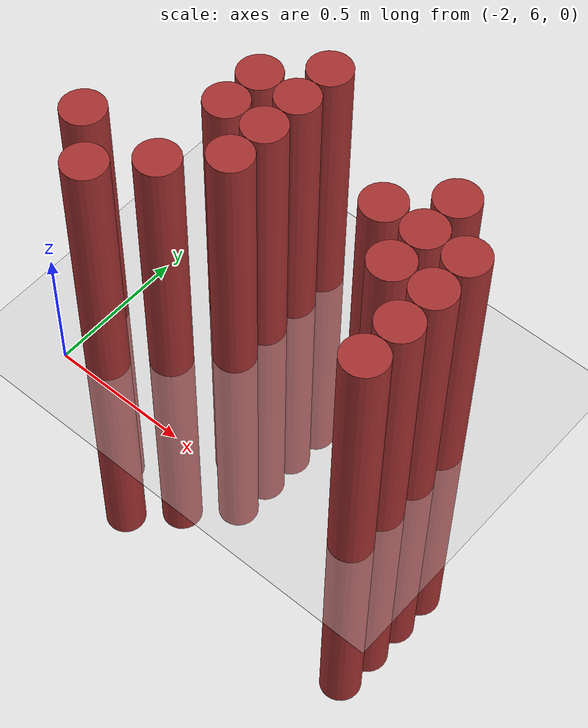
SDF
<sdf version="1.6">
 <world name="default">
  <model name="ground_plane">
   <static>1</static>
   <link name="link">
    <collision name="collision">
     <geometry><plane><normal>0 0 1</normal><size>100 100</size></plane></geometry>
     <surface><friction><ode><mu>100</mu><mu2>50</mu2></ode></friction></surface>
    </collision>
    <visual name="visual">
     <cast_shadows>0</cast_shadows>
     <geometry><plane><normal>0 0 1</normal><size>100 100</size></plane></geometry>
     <material>
      <script><uri>file://media/materials/scripts/gazebo.material</uri><name>Gazebo/Grey</name></script>
     </material>
    </visual>
   </link>
  </model>
  <model name="unit_cylinder_186">
   <static>1</static>
   <pose>-2.025000 6.225000 0.000000 0.000000 0.000000 0.000000</pose>
   <link name="link">
    <inertial>
     <mass>1</mass>
     <inertia><ixx>0.145833</ixx><ixy>0</ixy><ixz>0</ixz><iyy>0.145833</iyy><iyz>0</iyz><izz>0.125</izz></inertia>
    </inertial>
    <collision name="collision">
     <geometry><cylinder><radius>0.075000</radius><length>2</length></cylinder></geometry>
    </collision>
    <visual name="visual">
     <geometry><cylinder><radius>0.075000</radius><length>2</length></cylinder></geometry>
     <material>
      <ambient>0.648000 0.192000 0.192000 1</ambient>
      <diffuse>0.648000 0.192000 0.192000 1</diffuse>
     </material>
     <material>
      <script><name>Gazebo/Grey</name><uri>file://media/materials/scripts/gazebo.material</uri></script>
     </material>
    </visual>
   </link>
  </model>
  <model name="unit_cylinder_190">
   <static>1</static>
   <pose>-1.875000 6.075000 0.000000 0.000000 0.000000 0.000000</pose>
   <link name="link">
    <inertial>
     <mass>1</mass>
     <inertia><ixx>0.145833</ixx><ixy>0</ixy><ixz>0</ixz><iyy>0.145833</iyy><iyz>0</iyz><izz>0.125</izz></inertia>
    </inertial>
    <collision name="collision">
     <geometry><cylinder><radius>0.075000</radius><length>2</length></cylinder></geometry>
    </collision>
    <visual name="visual">
     <geometry><cylinder><radius>0.075000</radius><length>2</length></cylinder></geometry>
     <material>
      <ambient>0.648000 0.192000 0.192000 1</ambient>
      <diffuse>0.648000 0.192000 0.192000 1</diffuse>
     </material>
     <material>
      <script><name>Gazebo/Grey</name><uri>file://media/materials/scripts/gazebo.material</uri></script>
     </material>
    </visual>
   </link>
  </model>
  <model name="unit_cylinder_195">
   <static>1</static>
   <pose>-1.725000 6.225000 0.000000 0.000000 0.000000 0.000000</pose>
   <link name="link">
    <inertial>
     <mass>1</mass>
     <inertia><ixx>0.145833</ixx><ixy>0</ixy><ixz>0</ixz><iyy>0.145833</iyy><iyz>0</iyz><izz>0.125</izz></inertia>
    </inertial>
    <collision name="collision">
     <geometry><cylinder><radius>0.075000</radius><length>2</length></cylinder></geometry>
    </collision>
    <visual name="visual">
     <geometry><cylinder><radius>0.075000</radius><length>2</length></cylinder></geometry>
     <material>
      <ambient>0.648000 0.192000 0.192000 1</ambient>
      <diffuse>0.648000 0.192000 0.192000 1</diffuse>
     </material>
     <material>
      <script><name>Gazebo/Grey</name><uri>file://media/materials/scripts/gazebo.material</uri></script>
     </material>
    </visual>
   </link>
  </model>
  <model name="unit_cylinder_196">
   <static>1</static>
   <pose>-1.725000 6.525000 0.000000 0.000000 0.000000 0.000000</pose>
   <link name="link">
    <inertial>
     <mass>1</mass>
     <inertia><ixx>0.145833</ixx><ixy>0</ixy><ixz>0</ixz><iyy>0.145833</iyy><iyz>0</iyz><izz>0.125</izz></inertia>
    </inertial>
    <collision name="collision">
     <geometry><cylinder><radius>0.075000</radius><length>2</length></cylinder></geometry>
    </collision>
    <visual name="visual">
     <geometry><cylinder><radius>0.075000</radius><length>2</length></cylinder></geometry>
     <material>
      <ambient>0.648000 0.192000 0.192000 1</ambient>
      <diffuse>0.648000 0.192000 0.192000 1</diffuse>
     </material>
     <material>
      <script><name>Gazebo/Grey</name><uri>file://media/materials/scripts/gazebo.material</uri></script>
     </material>
    </visual>
   </link>
  </model>
  <model name="unit_cylinder_197">
   <static>1</static>
   <pose>-1.725000 6.675000 0.000000 0.000000 0.000000 0.000000</pose>
   <link name="link">
    <inertial>
     <mass>1</mass>
     <inertia><ixx>0.145833</ixx><ixy>0</ixy><ixz>0</ixz><iyy>0.145833</iyy><iyz>0</iyz><izz>0.125</izz></inertia>
    </inertial>
    <collision name="collision">
     <geometry><cylinder><radius>0.075000</radius><length>2</length></cylinder></geometry>
    </collision>
    <visual name="visual">
     <geometry><cylinder><radius>0.075000</radius><length>2</length></cylinder></geometry>
     <material>
      <ambient>0.648000 0.192000 0.192000 1</ambient>
      <diffuse>0.648000 0.192000 0.192000 1</diffuse>
     </material>
     <material>
      <script><name>Gazebo/Grey</name><uri>file://media/materials/scripts/gazebo.material</uri></script>
     </material>
    </visual>
   </link>
  </model>
  <model name="unit_cylinder_200">
   <static>1</static>
   <pose>-1.575000 6.375000 0.000000 0.000000 0.000000 0.000000</pose>
   <link name="link">
    <inertial>
     <mass>1</mass>
     <inertia><ixx>0.145833</ixx><ixy>0</ixy><ixz>0</ixz><iyy>0.145833</iyy><iyz>0</iyz><izz>0.125</izz></inertia>
    </inertial>
    <collision name="collision">
     <geometry><cylinder><radius>0.075000</radius><length>2</length></cylinder></geometry>
    </collision>
    <visual name="visual">
     <geometry><cylinder><radius>0.075000</radius><length>2</length></cylinder></geometry>
     <material>
      <ambient>0.648000 0.192000 0.192000 1</ambient>
      <diffuse>0.648000 0.192000 0.192000 1</diffuse>
     </material>
     <material>
      <script><name>Gazebo/Grey</name><uri>file://media/materials/scripts/gazebo.material</uri></script>
     </material>
    </visual>
   </link>
  </model>
  <model name="unit_cylinder_201">
   <static>1</static>
   <pose>-1.575000 6.525000 0.000000 0.000000 0.000000 0.000000</pose>
   <link name="link">
    <inertial>
     <mass>1</mass>
     <inertia><ixx>0.145833</ixx><ixy>0</ixy><ixz>0</ixz><iyy>0.145833</iyy><iyz>0</iyz><izz>0.125</izz></inertia>
    </inertial>
    <collision name="collision">
     <geometry><cylinder><radius>0.075000</radius><length>2</length></cylinder></geometry>
    </collision>
    <visual name="visual">
     <geometry><cylinder><radius>0.075000</radius><length>2</length></cylinder></geometry>
     <material>
      <ambient>0.648000 0.192000 0.192000 1</ambient>
      <diffuse>0.648000 0.192000 0.192000 1</diffuse>
     </material>
     <material>
      <script><name>Gazebo/Grey</name><uri>file://media/materials/scripts/gazebo.material</uri></script>
     </material>
    </visual>
   </link>
  </model>
  <model name="unit_cylinder_202">
   <static>1</static>
   <pose>-1.575000 6.675000 0.000000 0.000000 0.000000 0.000000</pose>
   <link name="link">
    <inertial>
     <mass>1</mass>
     <inertia><ixx>0.145833</ixx><ixy>0</ixy><ixz>0</ixz><iyy>0.145833</iyy><iyz>0</iyz><izz>0.125</izz></inertia>
    </inertial>
    <collision name="collision">
     <geometry><cylinder><radius>0.075000</radius><length>2</length></cylinder></geometry>
    </collision>
    <visual name="visual">
     <geometry><cylinder><radius>0.075000</radius><length>2</length></cylinder></geometry>
     <material>
      <ambient>0.648000 0.192000 0.192000 1</ambient>
      <diffuse>0.648000 0.192000 0.192000 1</diffuse>
     </material>
     <material>
      <script><name>Gazebo/Grey</name><uri>file://media/materials/scripts/gazebo.material</uri></script>
     </material>
    </visual>
   </link>
  </model>
  <model name="unit_cylinder_203">
   <static>1</static>
   <pose>-1.575000 6.825000 0.000000 0.000000 0.000000 0.000000</pose>
   <link name="link">
    <inertial>
     <mass>1</mass>
     <inertia><ixx>0.145833</ixx><ixy>0</ixy><ixz>0</ixz><iyy>0.145833</iyy><iyz>0</iyz><izz>0.125</izz></inertia>
    </inertial>
    <collision name="collision">
     <geometry><cylinder><radius>0.075000</radius><length>2</length></cylinder></geometry>
    </collision>
    <visual name="visual">
     <geometry><cylinder><radius>0.075000</radius><length>2</length></cylinder></geometry>
     <material>
      <ambient>0.648000 0.192000 0.192000 1</ambient>
      <diffuse>0.648000 0.192000 0.192000 1</diffuse>
     </material>
     <material>
      <script><name>Gazebo/Grey</name><uri>file://media/materials/scripts/gazebo.material</uri></script>
     </material>
    </visual>
   </link>
  </model>
  <model name="unit_cylinder_206">
   <static>1</static>
   <pose>-1.125000 6.525000 0.000000 0.000000 0.000000 0.000000</pose>
   <link name="link">
    <inertial>
     <mass>1</mass>
     <inertia><ixx>0.145833</ixx><ixy>0</ixy><ixz>0</ixz><iyy>0.145833</iyy><iyz>0</iyz><izz>0.125</izz></inertia>
    </inertial>
    <collision name="collision">
     <geometry><cylinder><radius>0.075000</radius><length>2</length></cylinder></geometry>
    </collision>
    <visual name="visual">
     <geometry><cylinder><radius>0.075000</radius><length>2</length></cylinder></geometry>
     <material>
      <ambient>0.648000 0.192000 0.192000 1</ambient>
      <diffuse>0.648000 0.192000 0.192000 1</diffuse>
     </material>
     <material>
      <script><name>Gazebo/Grey</name><uri>file://media/materials/scripts/gazebo.material</uri></script>
     </material>
    </visual>
   </link>
  </model>
  <model name="unit_cylinder_209">
   <static>1</static>
   <pose>-0.975000 6.375000 0.000000 0.000000 0.000000 0.000000</pose>
   <link name="link">
    <inertial>
     <mass>1</mass>
     <inertia><ixx>0.145833</ixx><ixy>0</ixy><ixz>0</ixz><iyy>0.145833</iyy><iyz>0</iyz><izz>0.125</izz></inertia>
    </inertial>
    <collision name="collision">
     <geometry><cylinder><radius>0.075000</radius><length>2</length></cylinder></geometry>
    </collision>
    <visual name="visual">
     <geometry><cylinder><radius>0.075000</radius><length>2</length></cylinder></geometry>
     <material>
      <ambient>0.648000 0.192000 0.192000 1</ambient>
      <diffuse>0.648000 0.192000 0.192000 1</diffuse>
     </material>
     <material>
      <script><name>Gazebo/Grey</name><uri>file://media/materials/scripts/gazebo.material</uri></script>
     </material>
    </visual>
   </link>
  </model>
  <model name="unit_cylinder_210">
   <static>1</static>
   <pose>-0.975000 6.525000 0.000000 0.000000 0.000000 0.000000</pose>
   <link name="link">
    <inertial>
     <mass>1</mass>
     <inertia><ixx>0.145833</ixx><ixy>0</ixy><ixz>0</ixz><iyy>0.145833</iyy><iyz>0</iyz><izz>0.125</izz></inertia>
    </inertial>
    <collision name="collision">
     <geometry><cylinder><radius>0.075000</radius><length>2</length></cylinder></geometry>
    </collision>
    <visual name="visual">
     <geometry><cylinder><radius>0.075000</radius><length>2</length></cylinder></geometry>
     <material>
      <ambient>0.648000 0.192000 0.192000 1</ambient>
      <diffuse>0.648000 0.192000 0.192000 1</diffuse>
     </material>
     <material>
      <script><name>Gazebo/Grey</name><uri>file://media/materials/scripts/gazebo.material</uri></script>
     </material>
    </visual>
   </link>
  </model>
  <model name="unit_cylinder_211">
   <static>1</static>
   <pose>-0.975000 6.675000 0.000000 0.000000 0.000000 0.000000</pose>
   <link name="link">
    <inertial>
     <mass>1</mass>
     <inertia><ixx>0.145833</ixx><ixy>0</ixy><ixz>0</ixz><iyy>0.145833</iyy><iyz>0</iyz><izz>0.125</izz></inertia>
    </inertial>
    <collision name="collision">
     <geometry><cylinder><radius>0.075000</radius><length>2</length></cylinder></geometry>
    </collision>
    <visual name="visual">
     <geometry><cylinder><radius>0.075000</radius><length>2</length></cylinder></geometry>
     <material>
      <ambient>0.648000 0.192000 0.192000 1</ambient>
      <diffuse>0.648000 0.192000 0.192000 1</diffuse>
     </material>
     <material>
      <script><name>Gazebo/Grey</name><uri>file://media/materials/scripts/gazebo.material</uri></script>
     </material>
    </visual>
   </link>
  </model>
  <model name="unit_cylinder_215">
   <static>1</static>
   <pose>-0.825000 6.075000 0.000000 0.000000 0.000000 0.000000</pose>
   <link name="link">
    <inertial>
     <mass>1</mass>
     <inertia><ixx>0.145833</ixx><ixy>0</ixy><ixz>0</ixz><iyy>0.145833</iyy><iyz>0</iyz><izz>0.125</izz></inertia>
    </inertial>
    <collision name="collision">
     <geometry><cylinder><radius>0.075000</radius><length>2</length></cylinder></geometry>
    </collision>
    <visual name="visual">
     <geometry><cylinder><radius>0.075000</radius><length>2</length></cylinder></geometry>
     <material>
      <ambient>0.648000 0.192000 0.192000 1</ambient>
      <diffuse>0.648000 0.192000 0.192000 1</diffuse>
     </material>
     <material>
      <script><name>Gazebo/Grey</name><uri>file://media/materials/scripts/gazebo.material</uri></script>
     </material>
    </visual>
   </link>
  </model>
  <model name="unit_cylinder_216">
   <static>1</static>
   <pose>-0.825000 6.225000 0.000000 0.000000 0.000000 0.000000</pose>
   <link name="link">
    <inertial>
     <mass>1</mass>
     <inertia><ixx>0.145833</ixx><ixy>0</ixy><ixz>0</ixz><iyy>0.145833</iyy><iyz>0</iyz><izz>0.125</izz></inertia>
    </inertial>
    <collision name="collision">
     <geometry><cylinder><radius>0.075000</radius><length>2</length></cylinder></geometry>
    </collision>
    <visual name="visual">
     <geometry><cylinder><radius>0.075000</radius><length>2</length></cylinder></geometry>
     <material>
      <ambient>0.648000 0.192000 0.192000 1</ambient>
      <diffuse>0.648000 0.192000 0.192000 1</diffuse>
     </material>
     <material>
      <script><name>Gazebo/Grey</name><uri>file://media/materials/scripts/gazebo.material</uri></script>
     </material>
    </visual>
   </link>
  </model>
  <model name="unit_cylinder_217">
   <static>1</static>
   <pose>-0.825000 6.375000 0.000000 0.000000 0.000000 0.000000</pose>
   <link name="link">
    <inertial>
     <mass>1</mass>
     <inertia><ixx>0.145833</ixx><ixy>0</ixy><ixz>0</ixz><iyy>0.145833</iyy><iyz>0</iyz><izz>0.125</izz></inertia>
    </inertial>
    <collision name="collision">
     <geometry><cylinder><radius>0.075000</radius><length>2</length></cylinder></geometry>
    </collision>
    <visual name="visual">
     <geometry><cylinder><radius>0.075000</radius><length>2</length></cylinder></geometry>
     <material>
      <ambient>0.648000 0.192000 0.192000 1</ambient>
      <diffuse>0.648000 0.192000 0.192000 1</diffuse>
     </material>
     <material>
      <script><name>Gazebo/Grey</name><uri>file://media/materials/scripts/gazebo.material</uri></script>
     </material>
    </visual>
   </link>
  </model>
  <model name="unit_cylinder_218">
   <static>1</static>
   <pose>-0.825000 6.525000 0.000000 0.000000 0.000000 0.000000</pose>
   <link name="link">
    <inertial>
     <mass>1</mass>
     <inertia><ixx>0.145833</ixx><ixy>0</ixy><ixz>0</ixz><iyy>0.145833</iyy><iyz>0</iyz><izz>0.125</izz></inertia>
    </inertial>
    <collision name="collision">
     <geometry><cylinder><radius>0.075000</radius><length>2</length></cylinder></geometry>
    </collision>
    <visual name="visual">
     <geometry><cylinder><radius>0.075000</radius><length>2</length></cylinder></geometry>
     <material>
      <ambient>0.648000 0.192000 0.192000 1</ambient>
      <diffuse>0.648000 0.192000 0.192000 1</diffuse>
     </material>
     <material>
      <script><name>Gazebo/Grey</name><uri>file://media/materials/scripts/gazebo.material</uri></script>
     </material>
    </visual>
   </link>
  </model>
 </world>
</sdf>
